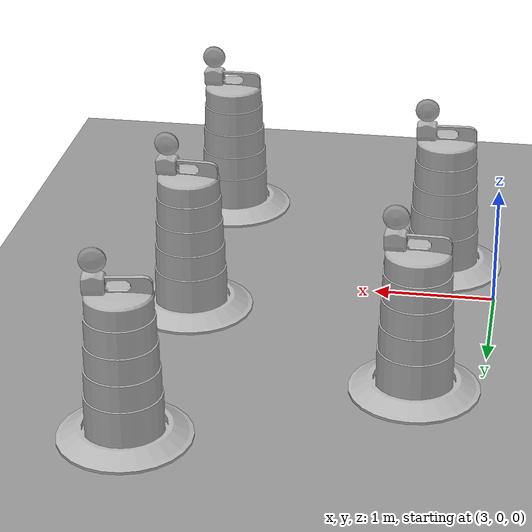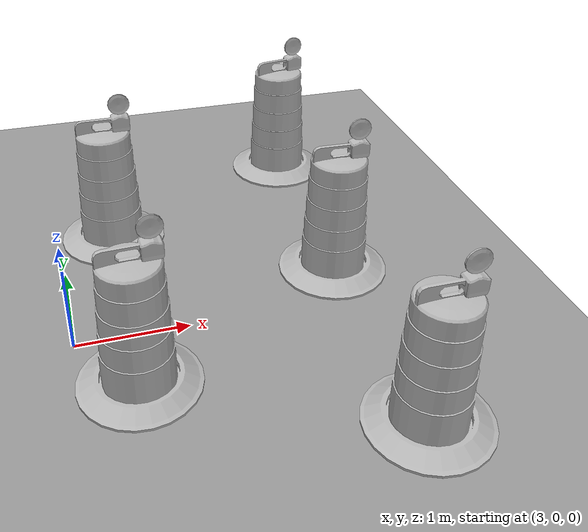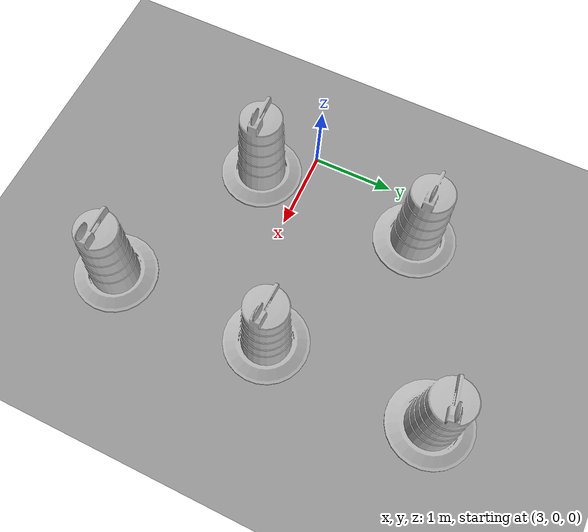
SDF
<sdf version="1.4">
 <world name="default">
  <light name="sun" type="directional">
   <pose>0 0 10 0 -0 0</pose>
   <diffuse>0.8 0.8 0.8 1</diffuse>
   <specular>0.2 0.2 0.2 1</specular>
   <attenuation>
    <range>1000</range>
    <constant>0.9</constant>
    <linear>0.01</linear>
    <quadratic>0.001</quadratic>
   </attenuation>
   <direction>0.5 0.1 -0.9</direction>
  </light>
  <scene><ambient>0.4 0.4 0.4 1</ambient><background>0.7 0.7 0.7 1</background><shadows>1</shadows></scene>
  <physics type="ode">
   <max_step_size>0.01</max_step_size>
   <real_time_factor>1</real_time_factor>
   <real_time_update_rate>100</real_time_update_rate>
   <gravity>0 0 -9.8</gravity>
  </physics>
  <model name="ground_plane_0">
   <static>1</static>
   <link name="link">
    <collision name="collision">
     <geometry><plane><normal>0 0 1</normal><size>100 100</size></plane></geometry>
     <surface><friction><ode><mu>100</mu><mu2>50</mu2></ode></friction></surface>
    </collision>
    <visual name="visual">
     <cast_shadows>0</cast_shadows>
     <geometry><plane><normal>0 0 1</normal><size>100 100</size></plane></geometry>
     <material>
      <script><uri>file://media/materials/scripts/gazebo.material</uri><name>Gazebo/Grey</name></script>
     </material>
    </visual>
    <velocity_decay><linear>0</linear><angular>0</angular></velocity_decay>
   </link>
   <pose>0.497681 0 0 0 -0 0</pose>
  </model>
  <spherical_coordinates>
   <surface_model>EARTH_WGS84</surface_model>
   <latitude_deg>0</latitude_deg>
   <longitude_deg>0</longitude_deg>
   <elevation>0</elevation>
   <heading_deg>0</heading_deg>
  </spherical_coordinates>
  <model name="Construction Barrel">
   <link name="link">
    <inertial>
     <pose>0 0 0.4 0 -0 0</pose>
     <mass>500</mass>
     <inertia><ixx>51.2096</ixx><iyy>51.2096</iyy><izz>25</izz><ixy>0</ixy><ixz>0</ixz><iyz>0</iyz></inertia>
    </inertial>
    <collision name="collision">
     <geometry><mesh><uri>model://construction_barrel/meshes/construction_barrel.dae</uri></mesh></geometry>
    </collision>
    <visual name="visual">
     <geometry><mesh><uri>model://construction_barrel/meshes/construction_barrel.dae</uri></mesh></geometry>
    </visual>
    <velocity_decay><linear>0</linear><angular>0</angular></velocity_decay>
   </link>
   <pose>3.477 -0.560084 -0.00017 -6.8e-05 -0.000543 0.042429</pose>
   <static>0</static>
  </model>
  <model name="Construction Barrel_0">
   <link name="link">
    <inertial>
     <pose>0 0 0.4 0 -0 0</pose>
     <mass>500</mass>
     <inertia><ixx>51.2096</ixx><iyy>51.2096</iyy><izz>25</izz><ixy>0</ixy><ixz>0</ixz><iyz>0</iyz></inertia>
    </inertial>
    <collision name="collision">
     <geometry><mesh><uri>model://construction_barrel/meshes/construction_barrel.dae</uri></mesh></geometry>
    </collision>
    <visual name="visual">
     <geometry><mesh><uri>model://construction_barrel/meshes/construction_barrel.dae</uri></mesh></geometry>
    </visual>
    <velocity_decay><linear>0</linear><angular>0</angular></velocity_decay>
   </link>
   <pose>3.52168 1.53695 -0.00017 -6.9e-05 -0.000543 -0.007127</pose>
   <static>0</static>
  </model>
  <model name="Construction Barrel_1">
   <link name="link">
    <inertial>
     <pose>0 0 0.4 0 -0 0</pose>
     <mass>500</mass>
     <inertia><ixx>51.2096</ixx><iyy>51.2096</iyy><izz>25</izz><ixy>0</ixy><ixz>0</ixz><iyz>0</iyz></inertia>
    </inertial>
    <collision name="collision">
     <geometry><mesh><uri>model://construction_barrel/meshes/construction_barrel.dae</uri></mesh></geometry>
    </collision>
    <visual name="visual">
     <geometry><mesh><uri>model://construction_barrel/meshes/construction_barrel.dae</uri></mesh></geometry>
    </visual>
    <velocity_decay><linear>0</linear><angular>0</angular></velocity_decay>
   </link>
   <pose>5.55035 2.51628 -0.000169 0.000504 0.000209 0.169633</pose>
   <static>0</static>
  </model>
  <model name="Construction Barrel_2">
   <link name="link">
    <inertial>
     <pose>0 0 0.4 0 -0 0</pose>
     <mass>500</mass>
     <inertia><ixx>51.2096</ixx><iyy>51.2096</iyy><izz>25</izz><ixy>0</ixy><ixz>0</ixz><iyz>0</iyz></inertia>
    </inertial>
    <collision name="collision">
     <geometry><mesh><uri>model://construction_barrel/meshes/construction_barrel.dae</uri></mesh></geometry>
    </collision>
    <visual name="visual">
     <geometry><mesh><uri>model://construction_barrel/meshes/construction_barrel.dae</uri></mesh></geometry>
    </visual>
    <velocity_decay><linear>0</linear><angular>0</angular></velocity_decay>
   </link>
   <pose>5.48156 0.475551 -0.00017 -6.9e-05 -0.000543 -0.040439</pose>
   <static>0</static>
  </model>
  <model name="Construction Barrel_3">
   <link name="link">
    <inertial>
     <pose>0 0 0.4 0 -0 0</pose>
     <mass>500</mass>
     <inertia><ixx>51.2096</ixx><iyy>51.2096</iyy><izz>25</izz><ixy>0</ixy><ixz>0</ixz><iyz>0</iyz></inertia>
    </inertial>
    <collision name="collision">
     <geometry><mesh><uri>model://construction_barrel/meshes/construction_barrel.dae</uri></mesh></geometry>
    </collision>
    <visual name="visual">
     <geometry><mesh><uri>model://construction_barrel/meshes/construction_barrel.dae</uri></mesh></geometry>
    </visual>
    <velocity_decay><linear>0</linear><angular>0</angular></velocity_decay>
   </link>
   <pose>5.48811 -1.52204 -0.00017 -6.9e-05 -0.000543 0.000763</pose>
   <static>0</static>
  </model>
 </world>
</sdf>
